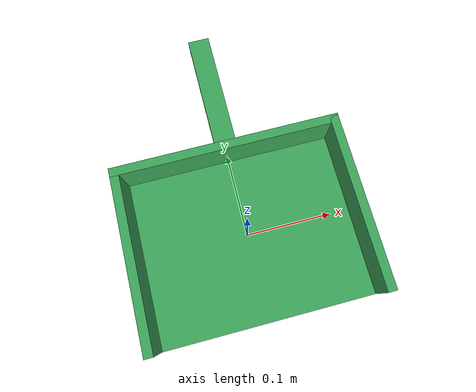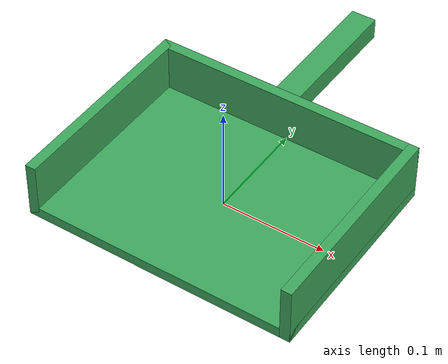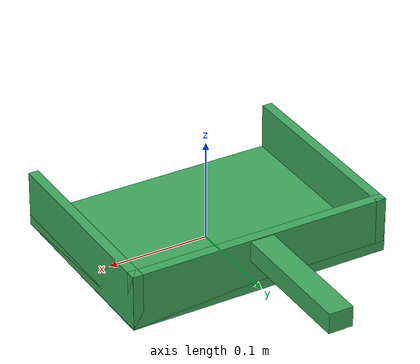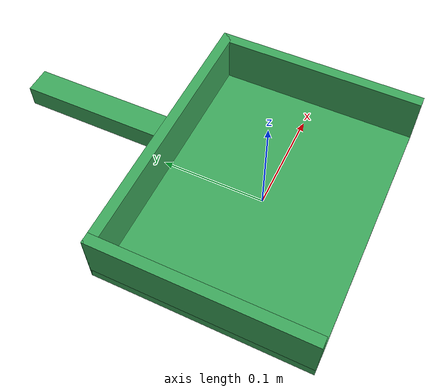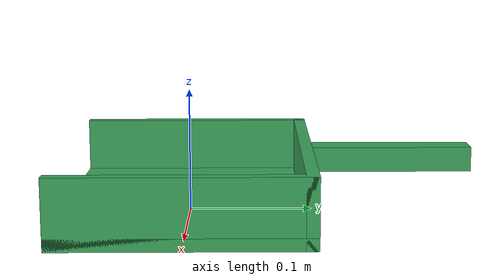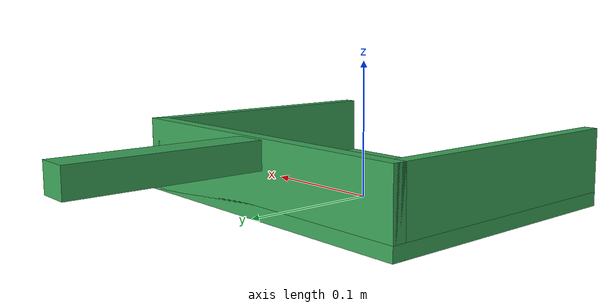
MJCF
<mujoco model="dustpan_prim_wide_green">
  <compiler angle="radian"/>
  <asset>
  </asset>
  <worldbody>
    <body name="dustpan_prim_wide_green">
      <freejoint/>
      <geom name="dustpan_prim_wide_green_g0" type="box" size="0.13 0.1 0.005" pos="0 0 0.005" rgba="0.24 0.66 0.36 1" mass="0.01" friction="0.05 0.05 0.005" condim="4"/>
      <geom name="dustpan_prim_wide_green_g1" type="box" size="0.13 0.005 0.0275" pos="0 0.095 0.0275" rgba="0.24 0.66 0.36 1" mass="0.01" friction="0.05 0.05 0.005" condim="4"/>
      <geom name="dustpan_prim_wide_green_g2" type="box" size="0.005 0.1 0.0275" pos="-0.125 0 0.0275" rgba="0.24 0.66 0.36 1" mass="0.01" friction="0.05 0.05 0.005" condim="4"/>
      <geom name="dustpan_prim_wide_green_g3" type="box" size="0.005 0.1 0.0275" pos="0.125 0 0.0275" rgba="0.24 0.66 0.36 1" mass="0.01" friction="0.05 0.05 0.005" condim="4"/>
      <geom name="dustpan_prim_wide_green_g4" type="box" size="0.012 0.065 0.01" pos="0 0.165 0.044" rgba="0.24 0.66 0.36 1" mass="0.01" friction="0.05 0.05 0.005" condim="4"/>
    </body>
  </worldbody>
</mujoco>
